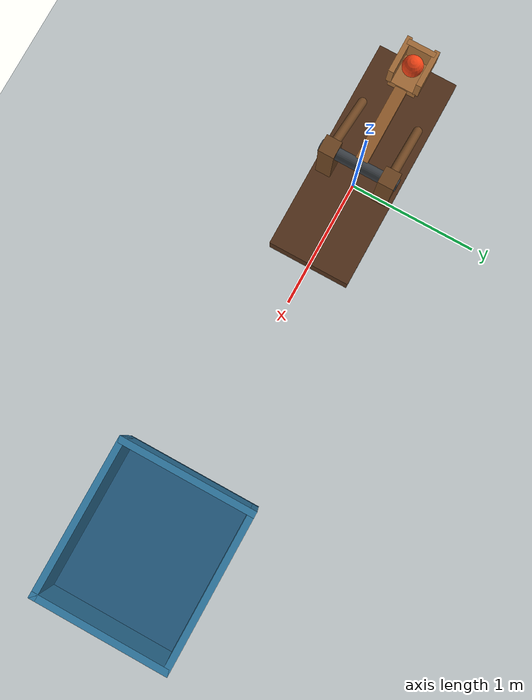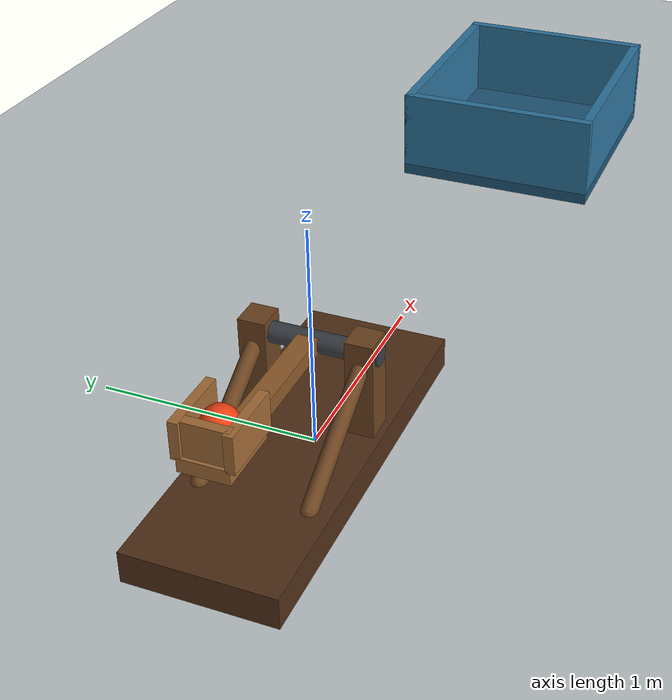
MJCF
<mujoco model="spring_catapult_into_bucket">
  <compiler angle="degree" inertiafromgeom="true"/>
  <option timestep="0.002" gravity="0 0 -9.81" integrator="implicitfast" iterations="100"/>
  <size njmax="500" nconmax="100"/>

  <visual>
    <global azimuth="145" elevation="-22"/>
    <headlight ambient="0.35 0.35 0.35" diffuse="0.7 0.7 0.7" specular="0.2 0.2 0.2"/>
  </visual>

  <worldbody>
    <light name="overhead" pos="1 -2 6" dir="0 0 -1" diffuse="0.8 0.8 0.8"/>
    <camera name="overview" pos="1.3 -5 4" xyaxes="1 0 0 0 0.6 0.8" fovy="48"/>
    <geom name="floor" type="plane" pos="0 0 0" size="6 4 0.1" rgba="0.76 0.79 0.80 1" contype="1" conaffinity="3" friction="0.8 0.01 0.001"/>

    <!-- Catapult parts share a collision mask that excludes self-collision. -->
    <body name="catapult_frame" pos="0 0 0">
      <geom name="catapult_base" type="box" pos="-0.15 0 0.07" size="0.85 0.32 0.07" rgba="0.32 0.19 0.10 1" contype="2" conaffinity="1"/>
      <geom name="catapult_left_post" type="box" pos="0 -0.23 0.32" size="0.065 0.06 0.25" rgba="0.43 0.27 0.13 1" contype="2" conaffinity="1"/>
      <geom name="catapult_right_post" type="box" pos="0 0.23 0.32" size="0.065 0.06 0.25" rgba="0.43 0.27 0.13 1" contype="2" conaffinity="1"/>
      <geom name="catapult_left_brace" type="capsule" fromto="-0.55 -0.23 0.14 0 -0.23 0.48" size="0.035" rgba="0.43 0.27 0.13 1" contype="2" conaffinity="1"/>
      <geom name="catapult_right_brace" type="capsule" fromto="-0.55 0.23 0.14 0 0.23 0.48" size="0.035" rgba="0.43 0.27 0.13 1" contype="2" conaffinity="1"/>
      <geom name="catapult_axle" type="cylinder" pos="0 0 0.50" quat="0.7071068 0.7071068 0 0" size="0.045 0.30" rgba="0.22 0.24 0.26 1" contype="2" conaffinity="1"/>
    </body>

    <!-- The preloaded spring raises the arm to its stop, releasing the ball. -->
    <body name="catapult_arm" pos="0 0 0.50">
      <joint name="catapult_hinge" type="hinge" axis="0 1 0" limited="true" range="0 45" stiffness="7.85" springref="90" damping="0.03" armature="0.001" solreflimit="0.004 1" solimplimit="0.99 0.999 0.001"/>
      <geom name="catapult_throwing_arm" type="box" pos="-0.375 0 0" size="0.375 0.045 0.035" mass="0.32" rgba="0.57 0.36 0.17 1" contype="2" conaffinity="1" friction="0.35 0.005 0.0001"/>
      <geom name="catapult_cup_bottom" type="box" pos="-0.75 0 0.02" size="0.14 0.105 0.03" mass="0.08" rgba="0.65 0.43 0.22 1" contype="2" conaffinity="1" friction="0.35 0.005 0.0001" solref="0.005 1" solimp="0.97 0.995 0.001"/>
      <geom name="catapult_cup_back" type="box" pos="-0.855 0 0.12" size="0.02 0.105 0.08" mass="0.04" rgba="0.65 0.43 0.22 1" contype="2" conaffinity="1" friction="0.25 0.005 0.0001" solref="0.005 1" solimp="0.97 0.995 0.001"/>
      <geom name="catapult_cup_left" type="box" pos="-0.75 -0.105 0.12" size="0.14 0.02 0.08" mass="0.025" rgba="0.65 0.43 0.22 1" contype="2" conaffinity="1" friction="0.25 0.005 0.0001" solref="0.005 1" solimp="0.97 0.995 0.001"/>
      <geom name="catapult_cup_right" type="box" pos="-0.75 0.105 0.12" size="0.14 0.02 0.08" mass="0.025" rgba="0.65 0.43 0.22 1" contype="2" conaffinity="1" friction="0.25 0.005 0.0001" solref="0.005 1" solimp="0.97 0.995 0.001"/>
    </body>

    <body name="ball" pos="-0.75 0 0.625">
      <freejoint name="ball_free"/>
      <geom name="ball" type="sphere" size="0.075" mass="0.10" rgba="0.95 0.26 0.08 1" contype="1" conaffinity="3" friction="0.25 0.005 0.0001" solref="0.005 1" solimp="0.97 0.995 0.001"/>
    </body>

    <!-- Open bucket, with its center 3 m horizontally from the catapult pivot. -->
    <body name="bucket" pos="3 0 0">
      <geom name="bucket_bottom" type="box" pos="0 0 0.03" size="0.605 0.525 0.03" rgba="0.13 0.34 0.48 1" contype="1" conaffinity="3" friction="1.0 0.02 0.002" solref="0.008 1" solimp="0.97 0.995 0.001"/>
      <geom name="bucket_front_wall" type="box" pos="-0.58 0 0.27" size="0.025 0.525 0.21" rgba="0.18 0.46 0.62 1" contype="1" conaffinity="3" friction="1.0 0.02 0.002" solref="0.008 1" solimp="0.97 0.995 0.001"/>
      <geom name="bucket_back_wall" type="box" pos="0.58 0 0.27" size="0.025 0.525 0.21" rgba="0.18 0.46 0.62 1" contype="1" conaffinity="3" friction="1.0 0.02 0.002" solref="0.008 1" solimp="0.97 0.995 0.001"/>
      <geom name="bucket_left_wall" type="box" pos="0 -0.50 0.27" size="0.605 0.025 0.21" rgba="0.18 0.46 0.62 1" contype="1" conaffinity="3" friction="1.0 0.02 0.002" solref="0.008 1" solimp="0.97 0.995 0.001"/>
      <geom name="bucket_right_wall" type="box" pos="0 0.50 0.27" size="0.605 0.025 0.21" rgba="0.18 0.46 0.62 1" contype="1" conaffinity="3" friction="1.0 0.02 0.002" solref="0.008 1" solimp="0.97 0.995 0.001"/>
    </body>
  </worldbody>

  <keyframe>
    <key name="start" qpos="0 -0.75 0 0.625 1 0 0 0" qvel="0 0 0 0 0 0 0"/>
  </keyframe>
</mujoco>
